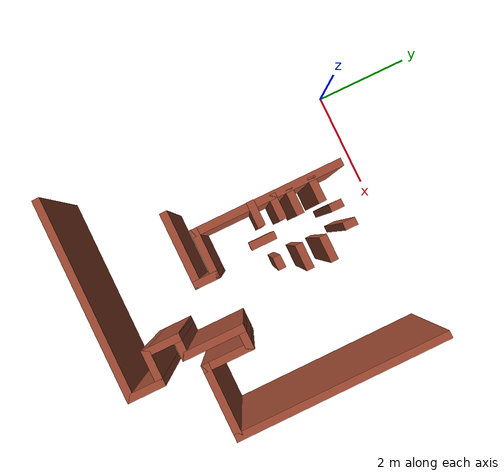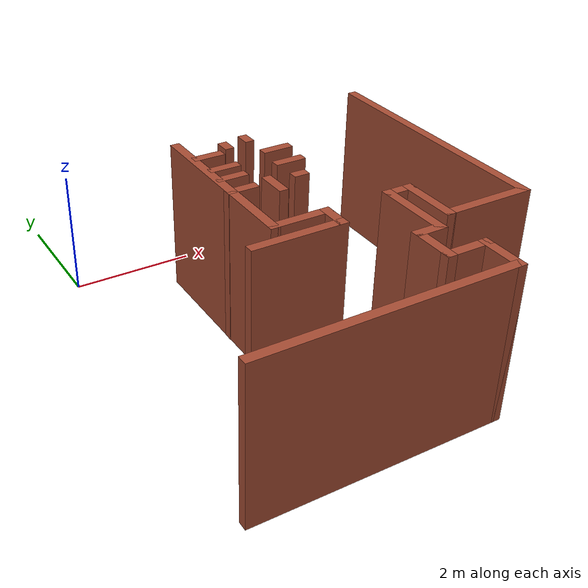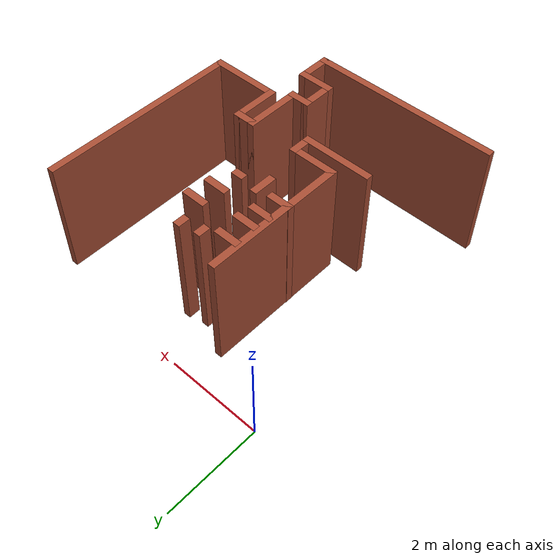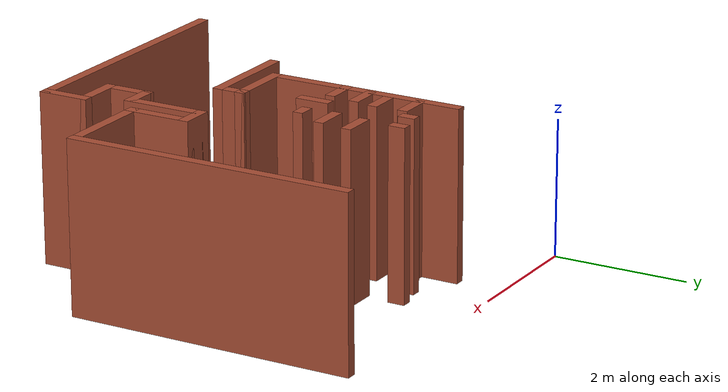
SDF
<sdf version="1.6">
 <model name="map_77">
  <link name="Wall_134">
   <pose>1.80767 -1.29266 0 0 -0 0</pose>
   <visual name="Wall_134_Visual">
    <pose>0 0 1.25 0 -0 0</pose>
    <geometry><box><size>0.5 0.15 2.5</size></box></geometry>
    <material>
     <script><uri>file://media/materials/scripts/gazebo.material</uri><name>Gazebo/Bricks</name></script>
     <ambient>1 1 1 1</ambient>
     <shader type="pixel"/>
    </material>
    <meta><layer>0</layer></meta>
   </visual>
   <collision name="Wall_134_Collision">
    <pose>0 0 1.25 0 -0 0</pose>
    <geometry><box><size>0.5 0.15 2.5</size></box></geometry>
    <surface>
     <friction>
      <ode><mu>1</mu><mu2>1</mu2><fdir1>0 0 0</fdir1><slip1>0</slip1><slip2>0</slip2></ode>
      <torsional>
       <coefficient>1</coefficient>
       <patch_radius>0</patch_radius>
       <surface_radius>0</surface_radius>
       <use_patch_radius>1</use_patch_radius>
       <ode><slip>0</slip></ode>
      </torsional>
     </friction>
     <bounce><restitution_coefficient>0</restitution_coefficient><threshold>1e+06</threshold></bounce>
     <contact>
      <collide_without_contact>0</collide_without_contact>
      <collide_without_contact_bitmask>1</collide_without_contact_bitmask>
      <collide_bitmask>1</collide_bitmask>
      <ode>
       <soft_cfm>0</soft_cfm>
       <soft_erp>0.2</soft_erp>
       <kp>1e+13</kp>
       <kd>1</kd>
       <max_vel>0.01</max_vel>
       <min_depth>0</min_depth>
      </ode>
      <bullet>
       <split_impulse>1</split_impulse>
       <split_impulse_penetration_threshold>-0.01</split_impulse_penetration_threshold>
       <soft_cfm>0</soft_cfm>
       <soft_erp>0.2</soft_erp>
       <kp>1e+13</kp>
       <kd>1</kd>
      </bullet>
     </contact>
    </surface>
   </collision>
  </link>
  <link name="Wall_136">
   <pose>1.83427 -1.74486 0 0 -0 0</pose>
   <visual name="Wall_136_Visual">
    <pose>0 0 1.25 0 -0 0</pose>
    <geometry><box><size>0.5 0.15 2.5</size></box></geometry>
    <material>
     <script><uri>file://media/materials/scripts/gazebo.material</uri><name>Gazebo/Bricks</name></script>
     <ambient>1 1 1 1</ambient>
     <shader type="pixel"/>
    </material>
    <meta><layer>0</layer></meta>
   </visual>
   <collision name="Wall_136_Collision">
    <pose>0 0 1.25 0 -0 0</pose>
    <geometry><box><size>0.5 0.15 2.5</size></box></geometry>
    <surface>
     <friction>
      <ode><mu>1</mu><mu2>1</mu2><fdir1>0 0 0</fdir1><slip1>0</slip1><slip2>0</slip2></ode>
      <torsional>
       <coefficient>1</coefficient>
       <patch_radius>0</patch_radius>
       <surface_radius>0</surface_radius>
       <use_patch_radius>1</use_patch_radius>
       <ode><slip>0</slip></ode>
      </torsional>
     </friction>
     <bounce><restitution_coefficient>0</restitution_coefficient><threshold>1e+06</threshold></bounce>
     <contact>
      <collide_without_contact>0</collide_without_contact>
      <collide_without_contact_bitmask>1</collide_without_contact_bitmask>
      <collide_bitmask>1</collide_bitmask>
      <ode>
       <soft_cfm>0</soft_cfm>
       <soft_erp>0.2</soft_erp>
       <kp>1e+13</kp>
       <kd>1</kd>
       <max_vel>0.01</max_vel>
       <min_depth>0</min_depth>
      </ode>
      <bullet>
       <split_impulse>1</split_impulse>
       <split_impulse_penetration_threshold>-0.01</split_impulse_penetration_threshold>
       <soft_cfm>0</soft_cfm>
       <soft_erp>0.2</soft_erp>
       <kp>1e+13</kp>
       <kd>1</kd>
      </bullet>
     </contact>
    </surface>
   </collision>
  </link>
  <link name="Wall_138">
   <pose>1.78107 -2.06406 0 0 -0 0</pose>
   <visual name="Wall_138_Visual">
    <pose>0 0 1.25 0 -0 0</pose>
    <geometry><box><size>0.5 0.15 2.5</size></box></geometry>
    <material>
     <script><uri>file://media/materials/scripts/gazebo.material</uri><name>Gazebo/Bricks</name></script>
     <ambient>1 1 1 1</ambient>
     <shader type="pixel"/>
    </material>
    <meta><layer>0</layer></meta>
   </visual>
   <collision name="Wall_138_Collision">
    <pose>0 0 1.25 0 -0 0</pose>
    <geometry><box><size>0.5 0.15 2.5</size></box></geometry>
    <surface>
     <friction>
      <ode><mu>1</mu><mu2>1</mu2><fdir1>0 0 0</fdir1><slip1>0</slip1><slip2>0</slip2></ode>
      <torsional>
       <coefficient>1</coefficient>
       <patch_radius>0</patch_radius>
       <surface_radius>0</surface_radius>
       <use_patch_radius>1</use_patch_radius>
       <ode><slip>0</slip></ode>
      </torsional>
     </friction>
     <bounce><restitution_coefficient>0</restitution_coefficient><threshold>1e+06</threshold></bounce>
     <contact>
      <collide_without_contact>0</collide_without_contact>
      <collide_without_contact_bitmask>1</collide_without_contact_bitmask>
      <collide_bitmask>1</collide_bitmask>
      <ode>
       <soft_cfm>0</soft_cfm>
       <soft_erp>0.2</soft_erp>
       <kp>1e+13</kp>
       <kd>1</kd>
       <max_vel>0.01</max_vel>
       <min_depth>0</min_depth>
      </ode>
      <bullet>
       <split_impulse>1</split_impulse>
       <split_impulse_penetration_threshold>-0.01</split_impulse_penetration_threshold>
       <soft_cfm>0</soft_cfm>
       <soft_erp>0.2</soft_erp>
       <kp>1e+13</kp>
       <kd>1</kd>
      </bullet>
     </contact>
    </surface>
   </collision>
  </link>
  <link name="Wall_140">
   <pose>1.72787 -2.46306 0 0 -0 0</pose>
   <visual name="Wall_140_Visual">
    <pose>0 0 1.25 0 -0 0</pose>
    <geometry><box><size>0.5 0.15 2.5</size></box></geometry>
    <material>
     <script><uri>file://media/materials/scripts/gazebo.material</uri><name>Gazebo/Bricks</name></script>
     <ambient>1 1 1 1</ambient>
     <shader type="pixel"/>
    </material>
    <meta><layer>0</layer></meta>
   </visual>
   <collision name="Wall_140_Collision">
    <pose>0 0 1.25 0 -0 0</pose>
    <geometry><box><size>0.5 0.15 2.5</size></box></geometry>
    <surface>
     <friction>
      <ode><mu>1</mu><mu2>1</mu2><fdir1>0 0 0</fdir1><slip1>0</slip1><slip2>0</slip2></ode>
      <torsional>
       <coefficient>1</coefficient>
       <patch_radius>0</patch_radius>
       <surface_radius>0</surface_radius>
       <use_patch_radius>1</use_patch_radius>
       <ode><slip>0</slip></ode>
      </torsional>
     </friction>
     <bounce><restitution_coefficient>0</restitution_coefficient><threshold>1e+06</threshold></bounce>
     <contact>
      <collide_without_contact>0</collide_without_contact>
      <collide_without_contact_bitmask>1</collide_without_contact_bitmask>
      <collide_bitmask>1</collide_bitmask>
      <ode>
       <soft_cfm>0</soft_cfm>
       <soft_erp>0.2</soft_erp>
       <kp>1e+13</kp>
       <kd>1</kd>
       <max_vel>0.01</max_vel>
       <min_depth>0</min_depth>
      </ode>
      <bullet>
       <split_impulse>1</split_impulse>
       <split_impulse_penetration_threshold>-0.01</split_impulse_penetration_threshold>
       <soft_cfm>0</soft_cfm>
       <soft_erp>0.2</soft_erp>
       <kp>1e+13</kp>
       <kd>1</kd>
      </bullet>
     </contact>
    </surface>
   </collision>
  </link>
  <link name="Wall_142">
   <pose>2.69348 -2.46306 0 0 -0 0</pose>
   <visual name="Wall_142_Visual">
    <pose>0 0 1.25 0 -0 0</pose>
    <geometry><box><size>0.25 0.15 2.5</size></box></geometry>
    <material>
     <script><uri>file://media/materials/scripts/gazebo.material</uri><name>Gazebo/Bricks</name></script>
     <ambient>1 1 1 1</ambient>
     <shader type="pixel"/>
    </material>
    <meta><layer>0</layer></meta>
   </visual>
   <collision name="Wall_142_Collision">
    <pose>0 0 1.25 0 -0 0</pose>
    <geometry><box><size>0.25 0.15 2.5</size></box></geometry>
    <surface>
     <friction>
      <ode><mu>1</mu><mu2>1</mu2><fdir1>0 0 0</fdir1><slip1>0</slip1><slip2>0</slip2></ode>
      <torsional>
       <coefficient>1</coefficient>
       <patch_radius>0</patch_radius>
       <surface_radius>0</surface_radius>
       <use_patch_radius>1</use_patch_radius>
       <ode><slip>0</slip></ode>
      </torsional>
     </friction>
     <bounce><restitution_coefficient>0</restitution_coefficient><threshold>1e+06</threshold></bounce>
     <contact>
      <collide_without_contact>0</collide_without_contact>
      <collide_without_contact_bitmask>1</collide_without_contact_bitmask>
      <collide_bitmask>1</collide_bitmask>
      <ode>
       <soft_cfm>0</soft_cfm>
       <soft_erp>0.2</soft_erp>
       <kp>1e+13</kp>
       <kd>1</kd>
       <max_vel>0.01</max_vel>
       <min_depth>0</min_depth>
      </ode>
      <bullet>
       <split_impulse>1</split_impulse>
       <split_impulse_penetration_threshold>-0.01</split_impulse_penetration_threshold>
       <soft_cfm>0</soft_cfm>
       <soft_erp>0.2</soft_erp>
       <kp>1e+13</kp>
       <kd>1</kd>
      </bullet>
     </contact>
    </surface>
   </collision>
  </link>
  <link name="Wall_144">
   <pose>2.79188 -2.01086 0 0 -0 0</pose>
   <visual name="Wall_144_Visual">
    <pose>0 0 1.25 0 -0 0</pose>
    <geometry><box><size>0.5 0.15 2.5</size></box></geometry>
    <material>
     <script><uri>file://media/materials/scripts/gazebo.material</uri><name>Gazebo/Bricks</name></script>
     <ambient>1 1 1 1</ambient>
     <shader type="pixel"/>
    </material>
    <meta><layer>0</layer></meta>
   </visual>
   <collision name="Wall_144_Collision">
    <pose>0 0 1.25 0 -0 0</pose>
    <geometry><box><size>0.5 0.15 2.5</size></box></geometry>
    <surface>
     <friction>
      <ode><mu>1</mu><mu2>1</mu2><fdir1>0 0 0</fdir1><slip1>0</slip1><slip2>0</slip2></ode>
      <torsional>
       <coefficient>1</coefficient>
       <patch_radius>0</patch_radius>
       <surface_radius>0</surface_radius>
       <use_patch_radius>1</use_patch_radius>
       <ode><slip>0</slip></ode>
      </torsional>
     </friction>
     <bounce><restitution_coefficient>0</restitution_coefficient><threshold>1e+06</threshold></bounce>
     <contact>
      <collide_without_contact>0</collide_without_contact>
      <collide_without_contact_bitmask>1</collide_without_contact_bitmask>
      <collide_bitmask>1</collide_bitmask>
      <ode>
       <soft_cfm>0</soft_cfm>
       <soft_erp>0.2</soft_erp>
       <kp>1e+13</kp>
       <kd>1</kd>
       <max_vel>0.01</max_vel>
       <min_depth>0</min_depth>
      </ode>
      <bullet>
       <split_impulse>1</split_impulse>
       <split_impulse_penetration_threshold>-0.01</split_impulse_penetration_threshold>
       <soft_cfm>0</soft_cfm>
       <soft_erp>0.2</soft_erp>
       <kp>1e+13</kp>
       <kd>1</kd>
      </bullet>
     </contact>
    </surface>
   </collision>
  </link>
  <link name="Wall_146">
   <pose>2.84508 -1.55866 0 0 -0 0</pose>
   <visual name="Wall_146_Visual">
    <pose>0 0 1.25 0 -0 0</pose>
    <geometry><box><size>0.5 0.15 2.5</size></box></geometry>
    <material>
     <script><uri>file://media/materials/scripts/gazebo.material</uri><name>Gazebo/Bricks</name></script>
     <ambient>1 1 1 1</ambient>
     <shader type="pixel"/>
    </material>
    <meta><layer>0</layer></meta>
   </visual>
   <collision name="Wall_146_Collision">
    <pose>0 0 1.25 0 -0 0</pose>
    <geometry><box><size>0.5 0.15 2.5</size></box></geometry>
    <surface>
     <friction>
      <ode><mu>1</mu><mu2>1</mu2><fdir1>0 0 0</fdir1><slip1>0</slip1><slip2>0</slip2></ode>
      <torsional>
       <coefficient>1</coefficient>
       <patch_radius>0</patch_radius>
       <surface_radius>0</surface_radius>
       <use_patch_radius>1</use_patch_radius>
       <ode><slip>0</slip></ode>
      </torsional>
     </friction>
     <bounce><restitution_coefficient>0</restitution_coefficient><threshold>1e+06</threshold></bounce>
     <contact>
      <collide_without_contact>0</collide_without_contact>
      <collide_without_contact_bitmask>1</collide_without_contact_bitmask>
      <collide_bitmask>1</collide_bitmask>
      <ode>
       <soft_cfm>0</soft_cfm>
       <soft_erp>0.2</soft_erp>
       <kp>1e+13</kp>
       <kd>1</kd>
       <max_vel>0.01</max_vel>
       <min_depth>0</min_depth>
      </ode>
      <bullet>
       <split_impulse>1</split_impulse>
       <split_impulse_penetration_threshold>-0.01</split_impulse_penetration_threshold>
       <soft_cfm>0</soft_cfm>
       <soft_erp>0.2</soft_erp>
       <kp>1e+13</kp>
       <kd>1</kd>
      </bullet>
     </contact>
    </surface>
   </collision>
  </link>
  <link name="Wall_148">
   <pose>2.21787 -1.10325 0 0 0 -1.5708</pose>
   <visual name="Wall_148_Visual">
    <pose>0 0 1.25 0 -0 0</pose>
    <geometry><box><size>0.25 0.15 2.5</size></box></geometry>
    <material>
     <script><uri>file://media/materials/scripts/gazebo.material</uri><name>Gazebo/Bricks</name></script>
     <ambient>1 1 1 1</ambient>
     <shader type="pixel"/>
    </material>
    <meta><layer>0</layer></meta>
   </visual>
   <collision name="Wall_148_Collision">
    <pose>0 0 1.25 0 -0 0</pose>
    <geometry><box><size>0.25 0.15 2.5</size></box></geometry>
    <surface>
     <friction>
      <ode><mu>1</mu><mu2>1</mu2><fdir1>0 0 0</fdir1><slip1>0</slip1><slip2>0</slip2></ode>
      <torsional>
       <coefficient>1</coefficient>
       <patch_radius>0</patch_radius>
       <surface_radius>0</surface_radius>
       <use_patch_radius>1</use_patch_radius>
       <ode><slip>0</slip></ode>
      </torsional>
     </friction>
     <bounce><restitution_coefficient>0</restitution_coefficient><threshold>1e+06</threshold></bounce>
     <contact>
      <collide_without_contact>0</collide_without_contact>
      <collide_without_contact_bitmask>1</collide_without_contact_bitmask>
      <collide_bitmask>1</collide_bitmask>
      <ode>
       <soft_cfm>0</soft_cfm>
       <soft_erp>0.2</soft_erp>
       <kp>1e+13</kp>
       <kd>1</kd>
       <max_vel>0.01</max_vel>
       <min_depth>0</min_depth>
      </ode>
      <bullet>
       <split_impulse>1</split_impulse>
       <split_impulse_penetration_threshold>-0.01</split_impulse_penetration_threshold>
       <soft_cfm>0</soft_cfm>
       <soft_erp>0.2</soft_erp>
       <kp>1e+13</kp>
       <kd>1</kd>
      </bullet>
     </contact>
    </surface>
   </collision>
  </link>
  <link name="Wall_150">
   <pose>2.61688 -1.02345 0 0 0 -1.5708</pose>
   <visual name="Wall_150_Visual">
    <pose>0 0 1.25 0 -0 0</pose>
    <geometry><box><size>0.25 0.15 2.5</size></box></geometry>
    <material>
     <script><uri>file://media/materials/scripts/gazebo.material</uri><name>Gazebo/Bricks</name></script>
     <ambient>1 1 1 1</ambient>
     <shader type="pixel"/>
    </material>
    <meta><layer>0</layer></meta>
   </visual>
   <collision name="Wall_150_Collision">
    <pose>0 0 1.25 0 -0 0</pose>
    <geometry><box><size>0.25 0.15 2.5</size></box></geometry>
    <surface>
     <friction>
      <ode><mu>1</mu><mu2>1</mu2><fdir1>0 0 0</fdir1><slip1>0</slip1><slip2>0</slip2></ode>
      <torsional>
       <coefficient>1</coefficient>
       <patch_radius>0</patch_radius>
       <surface_radius>0</surface_radius>
       <use_patch_radius>1</use_patch_radius>
       <ode><slip>0</slip></ode>
      </torsional>
     </friction>
     <bounce><restitution_coefficient>0</restitution_coefficient><threshold>1e+06</threshold></bounce>
     <contact>
      <collide_without_contact>0</collide_without_contact>
      <collide_without_contact_bitmask>1</collide_without_contact_bitmask>
      <collide_bitmask>1</collide_bitmask>
      <ode>
       <soft_cfm>0</soft_cfm>
       <soft_erp>0.2</soft_erp>
       <kp>1e+13</kp>
       <kd>1</kd>
       <max_vel>0.01</max_vel>
       <min_depth>0</min_depth>
      </ode>
      <bullet>
       <split_impulse>1</split_impulse>
       <split_impulse_penetration_threshold>-0.01</split_impulse_penetration_threshold>
       <soft_cfm>0</soft_cfm>
       <soft_erp>0.2</soft_erp>
       <kp>1e+13</kp>
       <kd>1</kd>
      </bullet>
     </contact>
    </surface>
   </collision>
  </link>
  <link name="Wall_152">
   <pose>2.21787 -2.55826 0 0 0 -1.5708</pose>
   <visual name="Wall_152_Visual">
    <pose>0 0 1.25 0 -0 0</pose>
    <geometry><box><size>0.5 0.15 2.5</size></box></geometry>
    <material>
     <script><uri>file://media/materials/scripts/gazebo.material</uri><name>Gazebo/Bricks</name></script>
     <ambient>1 1 1 1</ambient>
     <shader type="pixel"/>
    </material>
    <meta><layer>0</layer></meta>
   </visual>
   <collision name="Wall_152_Collision">
    <pose>0 0 1.25 0 -0 0</pose>
    <geometry><box><size>0.5 0.15 2.5</size></box></geometry>
    <surface>
     <friction>
      <ode><mu>1</mu><mu2>1</mu2><fdir1>0 0 0</fdir1><slip1>0</slip1><slip2>0</slip2></ode>
      <torsional>
       <coefficient>1</coefficient>
       <patch_radius>0</patch_radius>
       <surface_radius>0</surface_radius>
       <use_patch_radius>1</use_patch_radius>
       <ode><slip>0</slip></ode>
      </torsional>
     </friction>
     <bounce><restitution_coefficient>0</restitution_coefficient><threshold>1e+06</threshold></bounce>
     <contact>
      <collide_without_contact>0</collide_without_contact>
      <collide_without_contact_bitmask>1</collide_without_contact_bitmask>
      <collide_bitmask>1</collide_bitmask>
      <ode>
       <soft_cfm>0</soft_cfm>
       <soft_erp>0.2</soft_erp>
       <kp>1e+13</kp>
       <kd>1</kd>
       <max_vel>0.01</max_vel>
       <min_depth>0</min_depth>
      </ode>
      <bullet>
       <split_impulse>1</split_impulse>
       <split_impulse_penetration_threshold>-0.01</split_impulse_penetration_threshold>
       <soft_cfm>0</soft_cfm>
       <soft_erp>0.2</soft_erp>
       <kp>1e+13</kp>
       <kd>1</kd>
      </bullet>
     </contact>
    </surface>
   </collision>
  </link>
  <link name="Wall_50">
   <pose>1.55883 -2.16769 0 0 0 -1.5708</pose>
   <visual name="Wall_50_Visual">
    <pose>0 0 1.25 0 -0 0</pose>
    <geometry><box><size>3 0.15 2.5</size></box></geometry>
    <material>
     <script><uri>file://media/materials/scripts/gazebo.material</uri><name>Gazebo/Bricks</name></script>
     <ambient>1 1 1 1</ambient>
     <shader type="pixel"/>
    </material>
    <meta><layer>0</layer></meta>
   </visual>
   <collision name="Wall_50_Collision">
    <pose>0 0 1.25 0 -0 0</pose>
    <geometry><box><size>3 0.15 2.5</size></box></geometry>
    <surface>
     <friction>
      <ode><mu>1</mu><mu2>1</mu2><fdir1>0 0 0</fdir1><slip1>0</slip1><slip2>0</slip2></ode>
      <torsional>
       <coefficient>1</coefficient>
       <patch_radius>0</patch_radius>
       <surface_radius>0</surface_radius>
       <use_patch_radius>1</use_patch_radius>
       <ode><slip>0</slip></ode>
      </torsional>
     </friction>
     <bounce><restitution_coefficient>0</restitution_coefficient><threshold>1e+06</threshold></bounce>
     <contact>
      <collide_without_contact>0</collide_without_contact>
      <collide_without_contact_bitmask>1</collide_without_contact_bitmask>
      <collide_bitmask>1</collide_bitmask>
      <ode>
       <soft_cfm>0</soft_cfm>
       <soft_erp>0.2</soft_erp>
       <kp>1e+13</kp>
       <kd>1</kd>
       <max_vel>0.01</max_vel>
       <min_depth>0</min_depth>
      </ode>
      <bullet>
       <split_impulse>1</split_impulse>
       <split_impulse_penetration_threshold>-0.01</split_impulse_penetration_threshold>
       <soft_cfm>0</soft_cfm>
       <soft_erp>0.2</soft_erp>
       <kp>1e+13</kp>
       <kd>1</kd>
      </bullet>
     </contact>
    </surface>
   </collision>
  </link>
  <link name="Wall_51">
   <pose>1.98383 -3.59269 0 0 -0 0</pose>
   <visual name="Wall_51_Visual">
    <pose>0 0 1.25 0 -0 0</pose>
    <geometry><box><size>1 0.15 2.5</size></box></geometry>
    <material>
     <script><uri>file://media/materials/scripts/gazebo.material</uri><name>Gazebo/Bricks</name></script>
     <ambient>1 1 1 1</ambient>
     <shader type="pixel"/>
    </material>
    <meta><layer>0</layer></meta>
   </visual>
   <collision name="Wall_51_Collision">
    <pose>0 0 1.25 0 -0 0</pose>
    <geometry><box><size>1 0.15 2.5</size></box></geometry>
    <surface>
     <friction>
      <ode><mu>1</mu><mu2>1</mu2><fdir1>0 0 0</fdir1><slip1>0</slip1><slip2>0</slip2></ode>
      <torsional>
       <coefficient>1</coefficient>
       <patch_radius>0</patch_radius>
       <surface_radius>0</surface_radius>
       <use_patch_radius>1</use_patch_radius>
       <ode><slip>0</slip></ode>
      </torsional>
     </friction>
     <bounce><restitution_coefficient>0</restitution_coefficient><threshold>1e+06</threshold></bounce>
     <contact>
      <collide_without_contact>0</collide_without_contact>
      <collide_without_contact_bitmask>1</collide_without_contact_bitmask>
      <collide_bitmask>1</collide_bitmask>
      <ode>
       <soft_cfm>0</soft_cfm>
       <soft_erp>0.2</soft_erp>
       <kp>1e+13</kp>
       <kd>1</kd>
       <max_vel>0.01</max_vel>
       <min_depth>0</min_depth>
      </ode>
      <bullet>
       <split_impulse>1</split_impulse>
       <split_impulse_penetration_threshold>-0.01</split_impulse_penetration_threshold>
       <soft_cfm>0</soft_cfm>
       <soft_erp>0.2</soft_erp>
       <kp>1e+13</kp>
       <kd>1</kd>
      </bullet>
     </contact>
    </surface>
   </collision>
  </link>
  <link name="Wall_52">
   <pose>2.40883 -3.76769 0 0 0 -1.5708</pose>
   <visual name="Wall_52_Visual">
    <pose>0 0 1.25 0 -0 0</pose>
    <geometry><box><size>0.5 0.15 2.5</size></box></geometry>
    <material>
     <script><uri>file://media/materials/scripts/gazebo.material</uri><name>Gazebo/Bricks</name></script>
     <ambient>1 1 1 1</ambient>
     <shader type="pixel"/>
    </material>
    <meta><layer>0</layer></meta>
   </visual>
   <collision name="Wall_52_Collision">
    <pose>0 0 1.25 0 -0 0</pose>
    <geometry><box><size>0.5 0.15 2.5</size></box></geometry>
    <surface>
     <friction>
      <ode><mu>1</mu><mu2>1</mu2><fdir1>0 0 0</fdir1><slip1>0</slip1><slip2>0</slip2></ode>
      <torsional>
       <coefficient>1</coefficient>
       <patch_radius>0</patch_radius>
       <surface_radius>0</surface_radius>
       <use_patch_radius>1</use_patch_radius>
       <ode><slip>0</slip></ode>
      </torsional>
     </friction>
     <bounce><restitution_coefficient>0</restitution_coefficient><threshold>1e+06</threshold></bounce>
     <contact>
      <collide_without_contact>0</collide_without_contact>
      <collide_without_contact_bitmask>1</collide_without_contact_bitmask>
      <collide_bitmask>1</collide_bitmask>
      <ode>
       <soft_cfm>0</soft_cfm>
       <soft_erp>0.2</soft_erp>
       <kp>1e+13</kp>
       <kd>1</kd>
       <max_vel>0.01</max_vel>
       <min_depth>0</min_depth>
      </ode>
      <bullet>
       <split_impulse>1</split_impulse>
       <split_impulse_penetration_threshold>-0.01</split_impulse_penetration_threshold>
       <soft_cfm>0</soft_cfm>
       <soft_erp>0.2</soft_erp>
       <kp>1e+13</kp>
       <kd>1</kd>
      </bullet>
     </contact>
    </surface>
   </collision>
  </link>
  <link name="Wall_53">
   <pose>1.73383 -3.94269 0 0 -0 3.14159</pose>
   <visual name="Wall_53_Visual">
    <pose>0 0 1.25 0 -0 0</pose>
    <geometry><box><size>1.5 0.15 2.5</size></box></geometry>
    <material>
     <script><uri>file://media/materials/scripts/gazebo.material</uri><name>Gazebo/Bricks</name></script>
     <ambient>1 1 1 1</ambient>
     <shader type="pixel"/>
    </material>
    <meta><layer>0</layer></meta>
   </visual>
   <collision name="Wall_53_Collision">
    <pose>0 0 1.25 0 -0 0</pose>
    <geometry><box><size>1.5 0.15 2.5</size></box></geometry>
    <surface>
     <friction>
      <ode><mu>1</mu><mu2>1</mu2><fdir1>0 0 0</fdir1><slip1>0</slip1><slip2>0</slip2></ode>
      <torsional>
       <coefficient>1</coefficient>
       <patch_radius>0</patch_radius>
       <surface_radius>0</surface_radius>
       <use_patch_radius>1</use_patch_radius>
       <ode><slip>0</slip></ode>
      </torsional>
     </friction>
     <bounce><restitution_coefficient>0</restitution_coefficient><threshold>1e+06</threshold></bounce>
     <contact>
      <collide_without_contact>0</collide_without_contact>
      <collide_without_contact_bitmask>1</collide_without_contact_bitmask>
      <collide_bitmask>1</collide_bitmask>
      <ode>
       <soft_cfm>0</soft_cfm>
       <soft_erp>0.2</soft_erp>
       <kp>1e+13</kp>
       <kd>1</kd>
       <max_vel>0.01</max_vel>
       <min_depth>0</min_depth>
      </ode>
      <bullet>
       <split_impulse>1</split_impulse>
       <split_impulse_penetration_threshold>-0.01</split_impulse_penetration_threshold>
       <soft_cfm>0</soft_cfm>
       <soft_erp>0.2</soft_erp>
       <kp>1e+13</kp>
       <kd>1</kd>
      </bullet>
     </contact>
    </surface>
   </collision>
  </link>
  <link name="Wall_61">
   <pose>1.78383 -5.89269 0 0 -0 0</pose>
   <visual name="Wall_61_Visual">
    <pose>0 0 1.25 0 -0 0</pose>
    <geometry><box><size>4 0.15 2.5</size></box></geometry>
    <material>
     <script><uri>file://media/materials/scripts/gazebo.material</uri><name>Gazebo/Bricks</name></script>
     <ambient>1 1 1 1</ambient>
     <shader type="pixel"/>
    </material>
    <meta><layer>0</layer></meta>
   </visual>
   <collision name="Wall_61_Collision">
    <pose>0 0 1.25 0 -0 0</pose>
    <geometry><box><size>4 0.15 2.5</size></box></geometry>
    <surface>
     <friction>
      <ode><mu>1</mu><mu2>1</mu2><fdir1>0 0 0</fdir1><slip1>0</slip1><slip2>0</slip2></ode>
      <torsional>
       <coefficient>1</coefficient>
       <patch_radius>0</patch_radius>
       <surface_radius>0</surface_radius>
       <use_patch_radius>1</use_patch_radius>
       <ode><slip>0</slip></ode>
      </torsional>
     </friction>
     <bounce><restitution_coefficient>0</restitution_coefficient><threshold>1e+06</threshold></bounce>
     <contact>
      <collide_without_contact>0</collide_without_contact>
      <collide_without_contact_bitmask>1</collide_without_contact_bitmask>
      <collide_bitmask>1</collide_bitmask>
      <ode>
       <soft_cfm>0</soft_cfm>
       <soft_erp>0.2</soft_erp>
       <kp>1e+13</kp>
       <kd>1</kd>
       <max_vel>0.01</max_vel>
       <min_depth>0</min_depth>
      </ode>
      <bullet>
       <split_impulse>1</split_impulse>
       <split_impulse_penetration_threshold>-0.01</split_impulse_penetration_threshold>
       <soft_cfm>0</soft_cfm>
       <soft_erp>0.2</soft_erp>
       <kp>1e+13</kp>
       <kd>1</kd>
      </bullet>
     </contact>
    </surface>
   </collision>
  </link>
  <link name="Wall_62">
   <pose>3.70883 -5.59269 0 0 -0 1.5708</pose>
   <visual name="Wall_62_Visual">
    <pose>0 0 1.25 0 -0 0</pose>
    <geometry><box><size>0.75 0.15 2.5</size></box></geometry>
    <material>
     <script><uri>file://media/materials/scripts/gazebo.material</uri><name>Gazebo/Bricks</name></script>
     <ambient>1 1 1 1</ambient>
     <shader type="pixel"/>
    </material>
    <meta><layer>0</layer></meta>
   </visual>
   <collision name="Wall_62_Collision">
    <pose>0 0 1.25 0 -0 0</pose>
    <geometry><box><size>0.75 0.15 2.5</size></box></geometry>
    <surface>
     <friction>
      <ode><mu>1</mu><mu2>1</mu2><fdir1>0 0 0</fdir1><slip1>0</slip1><slip2>0</slip2></ode>
      <torsional>
       <coefficient>1</coefficient>
       <patch_radius>0</patch_radius>
       <surface_radius>0</surface_radius>
       <use_patch_radius>1</use_patch_radius>
       <ode><slip>0</slip></ode>
      </torsional>
     </friction>
     <bounce><restitution_coefficient>0</restitution_coefficient><threshold>1e+06</threshold></bounce>
     <contact>
      <collide_without_contact>0</collide_without_contact>
      <collide_without_contact_bitmask>1</collide_without_contact_bitmask>
      <collide_bitmask>1</collide_bitmask>
      <ode>
       <soft_cfm>0</soft_cfm>
       <soft_erp>0.2</soft_erp>
       <kp>1e+13</kp>
       <kd>1</kd>
       <max_vel>0.01</max_vel>
       <min_depth>0</min_depth>
      </ode>
      <bullet>
       <split_impulse>1</split_impulse>
       <split_impulse_penetration_threshold>-0.01</split_impulse_penetration_threshold>
       <soft_cfm>0</soft_cfm>
       <soft_erp>0.2</soft_erp>
       <kp>1e+13</kp>
       <kd>1</kd>
      </bullet>
     </contact>
    </surface>
   </collision>
  </link>
  <link name="Wall_63">
   <pose>3.40883 -5.29269 0 0 -0 3.14159</pose>
   <visual name="Wall_63_Visual">
    <pose>0 0 1.25 0 -0 0</pose>
    <geometry><box><size>0.75 0.15 2.5</size></box></geometry>
    <material>
     <script><uri>file://media/materials/scripts/gazebo.material</uri><name>Gazebo/Bricks</name></script>
     <ambient>1 1 1 1</ambient>
     <shader type="pixel"/>
    </material>
    <meta><layer>0</layer></meta>
   </visual>
   <collision name="Wall_63_Collision">
    <pose>0 0 1.25 0 -0 0</pose>
    <geometry><box><size>0.75 0.15 2.5</size></box></geometry>
    <surface>
     <friction>
      <ode><mu>1</mu><mu2>1</mu2><fdir1>0 0 0</fdir1><slip1>0</slip1><slip2>0</slip2></ode>
      <torsional>
       <coefficient>1</coefficient>
       <patch_radius>0</patch_radius>
       <surface_radius>0</surface_radius>
       <use_patch_radius>1</use_patch_radius>
       <ode><slip>0</slip></ode>
      </torsional>
     </friction>
     <bounce><restitution_coefficient>0</restitution_coefficient><threshold>1e+06</threshold></bounce>
     <contact>
      <collide_without_contact>0</collide_without_contact>
      <collide_without_contact_bitmask>1</collide_without_contact_bitmask>
      <collide_bitmask>1</collide_bitmask>
      <ode>
       <soft_cfm>0</soft_cfm>
       <soft_erp>0.2</soft_erp>
       <kp>1e+13</kp>
       <kd>1</kd>
       <max_vel>0.01</max_vel>
       <min_depth>0</min_depth>
      </ode>
      <bullet>
       <split_impulse>1</split_impulse>
       <split_impulse_penetration_threshold>-0.01</split_impulse_penetration_threshold>
       <soft_cfm>0</soft_cfm>
       <soft_erp>0.2</soft_erp>
       <kp>1e+13</kp>
       <kd>1</kd>
      </bullet>
     </contact>
    </surface>
   </collision>
  </link>
  <link name="Wall_64">
   <pose>3.10883 -4.99269 0 0 -0 1.5708</pose>
   <visual name="Wall_64_Visual">
    <pose>0 0 1.25 0 -0 0</pose>
    <geometry><box><size>0.75 0.15 2.5</size></box></geometry>
    <material>
     <script><uri>file://media/materials/scripts/gazebo.material</uri><name>Gazebo/Bricks</name></script>
     <ambient>1 1 1 1</ambient>
     <shader type="pixel"/>
    </material>
    <meta><layer>0</layer></meta>
   </visual>
   <collision name="Wall_64_Collision">
    <pose>0 0 1.25 0 -0 0</pose>
    <geometry><box><size>0.75 0.15 2.5</size></box></geometry>
    <surface>
     <friction>
      <ode><mu>1</mu><mu2>1</mu2><fdir1>0 0 0</fdir1><slip1>0</slip1><slip2>0</slip2></ode>
      <torsional>
       <coefficient>1</coefficient>
       <patch_radius>0</patch_radius>
       <surface_radius>0</surface_radius>
       <use_patch_radius>1</use_patch_radius>
       <ode><slip>0</slip></ode>
      </torsional>
     </friction>
     <bounce><restitution_coefficient>0</restitution_coefficient><threshold>1e+06</threshold></bounce>
     <contact>
      <collide_without_contact>0</collide_without_contact>
      <collide_without_contact_bitmask>1</collide_without_contact_bitmask>
      <collide_bitmask>1</collide_bitmask>
      <ode>
       <soft_cfm>0</soft_cfm>
       <soft_erp>0.2</soft_erp>
       <kp>1e+13</kp>
       <kd>1</kd>
       <max_vel>0.01</max_vel>
       <min_depth>0</min_depth>
      </ode>
      <bullet>
       <split_impulse>1</split_impulse>
       <split_impulse_penetration_threshold>-0.01</split_impulse_penetration_threshold>
       <soft_cfm>0</soft_cfm>
       <soft_erp>0.2</soft_erp>
       <kp>1e+13</kp>
       <kd>1</kd>
      </bullet>
     </contact>
    </surface>
   </collision>
  </link>
  <link name="Wall_65">
   <pose>3.28383 -4.69269 0 0 -0 0</pose>
   <visual name="Wall_65_Visual">
    <pose>0 0 1.25 0 -0 0</pose>
    <geometry><box><size>0.5 0.15 2.5</size></box></geometry>
    <material>
     <script><uri>file://media/materials/scripts/gazebo.material</uri><name>Gazebo/Bricks</name></script>
     <ambient>1 1 1 1</ambient>
     <shader type="pixel"/>
    </material>
    <meta><layer>0</layer></meta>
   </visual>
   <collision name="Wall_65_Collision">
    <pose>0 0 1.25 0 -0 0</pose>
    <geometry><box><size>0.5 0.15 2.5</size></box></geometry>
    <surface>
     <friction>
      <ode><mu>1</mu><mu2>1</mu2><fdir1>0 0 0</fdir1><slip1>0</slip1><slip2>0</slip2></ode>
      <torsional>
       <coefficient>1</coefficient>
       <patch_radius>0</patch_radius>
       <surface_radius>0</surface_radius>
       <use_patch_radius>1</use_patch_radius>
       <ode><slip>0</slip></ode>
      </torsional>
     </friction>
     <bounce><restitution_coefficient>0</restitution_coefficient><threshold>1e+06</threshold></bounce>
     <contact>
      <collide_without_contact>0</collide_without_contact>
      <collide_without_contact_bitmask>1</collide_without_contact_bitmask>
      <collide_bitmask>1</collide_bitmask>
      <ode>
       <soft_cfm>0</soft_cfm>
       <soft_erp>0.2</soft_erp>
       <kp>1e+13</kp>
       <kd>1</kd>
       <max_vel>0.01</max_vel>
       <min_depth>0</min_depth>
      </ode>
      <bullet>
       <split_impulse>1</split_impulse>
       <split_impulse_penetration_threshold>-0.01</split_impulse_penetration_threshold>
       <soft_cfm>0</soft_cfm>
       <soft_erp>0.2</soft_erp>
       <kp>1e+13</kp>
       <kd>1</kd>
      </bullet>
     </contact>
    </surface>
   </collision>
  </link>
  <link name="Wall_66">
   <pose>3.45883 -4.14269 0 0 -0 1.5708</pose>
   <visual name="Wall_66_Visual">
    <pose>0 0 1.25 0 -0 0</pose>
    <geometry><box><size>1.25 0.15 2.5</size></box></geometry>
    <material>
     <script><uri>file://media/materials/scripts/gazebo.material</uri><name>Gazebo/Bricks</name></script>
     <ambient>1 1 1 1</ambient>
     <shader type="pixel"/>
    </material>
    <meta><layer>0</layer></meta>
   </visual>
   <collision name="Wall_66_Collision">
    <pose>0 0 1.25 0 -0 0</pose>
    <geometry><box><size>1.25 0.15 2.5</size></box></geometry>
    <surface>
     <friction>
      <ode><mu>1</mu><mu2>1</mu2><fdir1>0 0 0</fdir1><slip1>0</slip1><slip2>0</slip2></ode>
      <torsional>
       <coefficient>1</coefficient>
       <patch_radius>0</patch_radius>
       <surface_radius>0</surface_radius>
       <use_patch_radius>1</use_patch_radius>
       <ode><slip>0</slip></ode>
      </torsional>
     </friction>
     <bounce><restitution_coefficient>0</restitution_coefficient><threshold>1e+06</threshold></bounce>
     <contact>
      <collide_without_contact>0</collide_without_contact>
      <collide_without_contact_bitmask>1</collide_without_contact_bitmask>
      <collide_bitmask>1</collide_bitmask>
      <ode>
       <soft_cfm>0</soft_cfm>
       <soft_erp>0.2</soft_erp>
       <kp>1e+13</kp>
       <kd>1</kd>
       <max_vel>0.01</max_vel>
       <min_depth>0</min_depth>
      </ode>
      <bullet>
       <split_impulse>1</split_impulse>
       <split_impulse_penetration_threshold>-0.01</split_impulse_penetration_threshold>
       <soft_cfm>0</soft_cfm>
       <soft_erp>0.2</soft_erp>
       <kp>1e+13</kp>
       <kd>1</kd>
      </bullet>
     </contact>
    </surface>
   </collision>
  </link>
  <link name="Wall_67">
   <pose>3.63383 -3.59269 0 0 -0 0</pose>
   <visual name="Wall_67_Visual">
    <pose>0 0 1.25 0 -0 0</pose>
    <geometry><box><size>0.5 0.15 2.5</size></box></geometry>
    <material>
     <script><uri>file://media/materials/scripts/gazebo.material</uri><name>Gazebo/Bricks</name></script>
     <ambient>1 1 1 1</ambient>
     <shader type="pixel"/>
    </material>
    <meta><layer>0</layer></meta>
   </visual>
   <collision name="Wall_67_Collision">
    <pose>0 0 1.25 0 -0 0</pose>
    <geometry><box><size>0.5 0.15 2.5</size></box></geometry>
    <surface>
     <friction>
      <ode><mu>1</mu><mu2>1</mu2><fdir1>0 0 0</fdir1><slip1>0</slip1><slip2>0</slip2></ode>
      <torsional>
       <coefficient>1</coefficient>
       <patch_radius>0</patch_radius>
       <surface_radius>0</surface_radius>
       <use_patch_radius>1</use_patch_radius>
       <ode><slip>0</slip></ode>
      </torsional>
     </friction>
     <bounce><restitution_coefficient>0</restitution_coefficient><threshold>1e+06</threshold></bounce>
     <contact>
      <collide_without_contact>0</collide_without_contact>
      <collide_without_contact_bitmask>1</collide_without_contact_bitmask>
      <collide_bitmask>1</collide_bitmask>
      <ode>
       <soft_cfm>0</soft_cfm>
       <soft_erp>0.2</soft_erp>
       <kp>1e+13</kp>
       <kd>1</kd>
       <max_vel>0.01</max_vel>
       <min_depth>0</min_depth>
      </ode>
      <bullet>
       <split_impulse>1</split_impulse>
       <split_impulse_penetration_threshold>-0.01</split_impulse_penetration_threshold>
       <soft_cfm>0</soft_cfm>
       <soft_erp>0.2</soft_erp>
       <kp>1e+13</kp>
       <kd>1</kd>
      </bullet>
     </contact>
    </surface>
   </collision>
  </link>
  <link name="Wall_68">
   <pose>3.80883 -4.01769 0 0 0 -1.5708</pose>
   <visual name="Wall_68_Visual">
    <pose>0 0 1.25 0 -0 0</pose>
    <geometry><box><size>1 0.15 2.5</size></box></geometry>
    <material>
     <script><uri>file://media/materials/scripts/gazebo.material</uri><name>Gazebo/Bricks</name></script>
     <ambient>1 1 1 1</ambient>
     <shader type="pixel"/>
    </material>
    <meta><layer>0</layer></meta>
   </visual>
   <collision name="Wall_68_Collision">
    <pose>0 0 1.25 0 -0 0</pose>
    <geometry><box><size>1 0.15 2.5</size></box></geometry>
    <surface>
     <friction>
      <ode><mu>1</mu><mu2>1</mu2><fdir1>0 0 0</fdir1><slip1>0</slip1><slip2>0</slip2></ode>
      <torsional>
       <coefficient>1</coefficient>
       <patch_radius>0</patch_radius>
       <surface_radius>0</surface_radius>
       <use_patch_radius>1</use_patch_radius>
       <ode><slip>0</slip></ode>
      </torsional>
     </friction>
     <bounce><restitution_coefficient>0</restitution_coefficient><threshold>1e+06</threshold></bounce>
     <contact>
      <collide_without_contact>0</collide_without_contact>
      <collide_without_contact_bitmask>1</collide_without_contact_bitmask>
      <collide_bitmask>1</collide_bitmask>
      <ode>
       <soft_cfm>0</soft_cfm>
       <soft_erp>0.2</soft_erp>
       <kp>1e+13</kp>
       <kd>1</kd>
       <max_vel>0.01</max_vel>
       <min_depth>0</min_depth>
      </ode>
      <bullet>
       <split_impulse>1</split_impulse>
       <split_impulse_penetration_threshold>-0.01</split_impulse_penetration_threshold>
       <soft_cfm>0</soft_cfm>
       <soft_erp>0.2</soft_erp>
       <kp>1e+13</kp>
       <kd>1</kd>
      </bullet>
     </contact>
    </surface>
   </collision>
  </link>
  <link name="Wall_69">
   <pose>4.48383 -4.44269 0 0 -0 0</pose>
   <visual name="Wall_69_Visual">
    <pose>0 0 1.25 0 -0 0</pose>
    <geometry><box><size>1.5 0.15 2.5</size></box></geometry>
    <material>
     <script><uri>file://media/materials/scripts/gazebo.material</uri><name>Gazebo/Bricks</name></script>
     <ambient>1 1 1 1</ambient>
     <shader type="pixel"/>
    </material>
    <meta><layer>0</layer></meta>
   </visual>
   <collision name="Wall_69_Collision">
    <pose>0 0 1.25 0 -0 0</pose>
    <geometry><box><size>1.5 0.15 2.5</size></box></geometry>
    <surface>
     <friction>
      <ode><mu>1</mu><mu2>1</mu2><fdir1>0 0 0</fdir1><slip1>0</slip1><slip2>0</slip2></ode>
      <torsional>
       <coefficient>1</coefficient>
       <patch_radius>0</patch_radius>
       <surface_radius>0</surface_radius>
       <use_patch_radius>1</use_patch_radius>
       <ode><slip>0</slip></ode>
      </torsional>
     </friction>
     <bounce><restitution_coefficient>0</restitution_coefficient><threshold>1e+06</threshold></bounce>
     <contact>
      <collide_without_contact>0</collide_without_contact>
      <collide_without_contact_bitmask>1</collide_without_contact_bitmask>
      <collide_bitmask>1</collide_bitmask>
      <ode>
       <soft_cfm>0</soft_cfm>
       <soft_erp>0.2</soft_erp>
       <kp>1e+13</kp>
       <kd>1</kd>
       <max_vel>0.01</max_vel>
       <min_depth>0</min_depth>
      </ode>
      <bullet>
       <split_impulse>1</split_impulse>
       <split_impulse_penetration_threshold>-0.01</split_impulse_penetration_threshold>
       <soft_cfm>0</soft_cfm>
       <soft_erp>0.2</soft_erp>
       <kp>1e+13</kp>
       <kd>1</kd>
      </bullet>
     </contact>
    </surface>
   </collision>
  </link>
  <link name="Wall_70">
   <pose>5.15883 -2.39269 0 0 -0 1.5708</pose>
   <visual name="Wall_70_Visual">
    <pose>0 0 1.25 0 -0 0</pose>
    <geometry><box><size>4.25 0.15 2.5</size></box></geometry>
    <material>
     <script><uri>file://media/materials/scripts/gazebo.material</uri><name>Gazebo/Bricks</name></script>
     <ambient>1 1 1 1</ambient>
     <shader type="pixel"/>
    </material>
    <meta><layer>0</layer></meta>
   </visual>
   <collision name="Wall_70_Collision">
    <pose>0 0 1.25 0 -0 0</pose>
    <geometry><box><size>4.25 0.15 2.5</size></box></geometry>
    <surface>
     <friction>
      <ode><mu>1</mu><mu2>1</mu2><fdir1>0 0 0</fdir1><slip1>0</slip1><slip2>0</slip2></ode>
      <torsional>
       <coefficient>1</coefficient>
       <patch_radius>0</patch_radius>
       <surface_radius>0</surface_radius>
       <use_patch_radius>1</use_patch_radius>
       <ode><slip>0</slip></ode>
      </torsional>
     </friction>
     <bounce><restitution_coefficient>0</restitution_coefficient><threshold>1e+06</threshold></bounce>
     <contact>
      <collide_without_contact>0</collide_without_contact>
      <collide_without_contact_bitmask>1</collide_without_contact_bitmask>
      <collide_bitmask>1</collide_bitmask>
      <ode>
       <soft_cfm>0</soft_cfm>
       <soft_erp>0.2</soft_erp>
       <kp>1e+13</kp>
       <kd>1</kd>
       <max_vel>0.01</max_vel>
       <min_depth>0</min_depth>
      </ode>
      <bullet>
       <split_impulse>1</split_impulse>
       <split_impulse_penetration_threshold>-0.01</split_impulse_penetration_threshold>
       <soft_cfm>0</soft_cfm>
       <soft_erp>0.2</soft_erp>
       <kp>1e+13</kp>
       <kd>1</kd>
      </bullet>
     </contact>
    </surface>
   </collision>
  </link>
  <static>1</static>
 </model>
</sdf>
